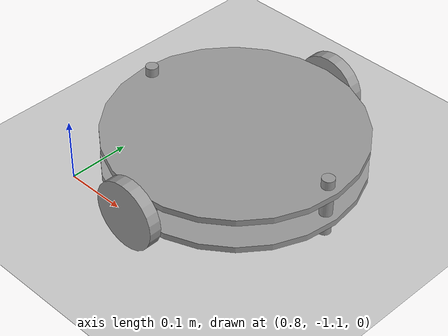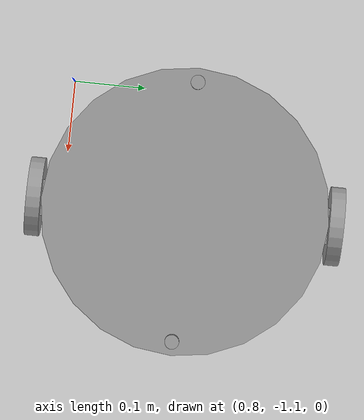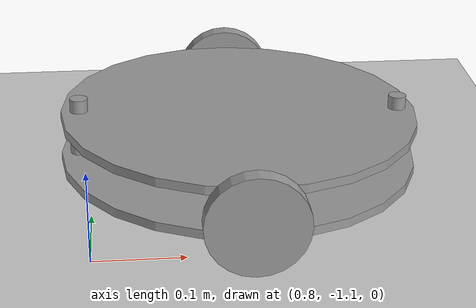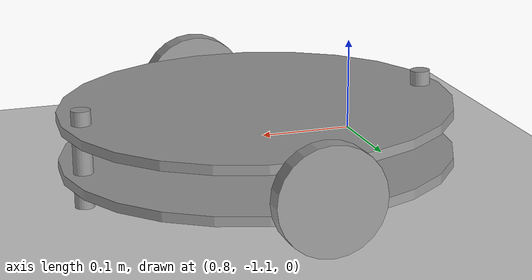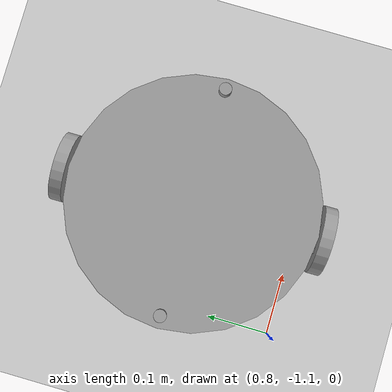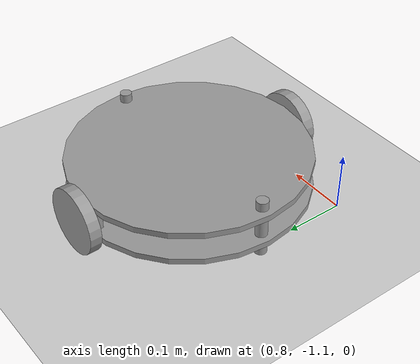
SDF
<sdf version="1.6">
 <world name="default">
  <model name="ground_plane">
   <static>1</static>
   <link name="link">
    <collision name="collision">
     <geometry><plane><normal>0 0 1</normal><size>100 100</size></plane></geometry>
     <surface><friction><ode><mu>100</mu><mu2>50</mu2></ode></friction></surface>
    </collision>
    <visual name="visual">
     <cast_shadows>0</cast_shadows>
     <geometry><plane><normal>0 0 1</normal><size>100 100</size></plane></geometry>
     <material>
      <script><uri>file://media/materials/scripts/gazebo.material</uri><name>Gazebo/Grey</name></script>
     </material>
    </visual>
   </link>
  </model>
  <model name="MyRobot">
   <link name="link_0">
    <pose>0 0 -0.02125 0 -0 0</pose>
    <inertial>
     <mass>1</mass>
     <inertia><ixx>0.145833</ixx><ixy>0</ixy><ixz>0</ixz><iyy>0.145833</iyy><iyz>0</iyz><izz>0.125</izz></inertia>
    </inertial>
    <visual name="visual">
     <geometry><cylinder><radius>0.2</radius><length>0.01</length></cylinder></geometry>
     <material>
      <lighting>1</lighting>
      <script><uri>file://media/materials/scripts/gazebo.material</uri><name>Gazebo/Grey</name></script>
      <ambient>0.3 0.3 0.3 1</ambient>
      <diffuse>0.7 0.7 0.7 1</diffuse>
      <specular>0.01 0.01 0.01 1</specular>
      <emissive>0 0 0 1</emissive>
      <shader type="vertex"><normal_map>__default__</normal_map></shader>
     </material>
    </visual>
    <collision name="collision">
     <geometry><cylinder><radius>0.2</radius><length>0.01</length></cylinder></geometry>
     <surface>
      <friction>
       <ode><mu>1</mu><mu2>1</mu2><fdir1>0 0 0</fdir1><slip1>0</slip1><slip2>0</slip2></ode>
       <torsional>
        <coefficient>1</coefficient>
        <patch_radius>0</patch_radius>
        <surface_radius>0</surface_radius>
        <use_patch_radius>1</use_patch_radius>
        <ode><slip>0</slip></ode>
       </torsional>
      </friction>
      <bounce><restitution_coefficient>0</restitution_coefficient><threshold>1e+06</threshold></bounce>
      <contact>
       <collide_without_contact>0</collide_without_contact>
       <collide_without_contact_bitmask>1</collide_without_contact_bitmask>
       <collide_bitmask>1</collide_bitmask>
       <ode>
        <soft_cfm>0</soft_cfm>
        <soft_erp>0.2</soft_erp>
        <kp>1e+13</kp>
        <kd>1</kd>
        <max_vel>0.01</max_vel>
        <min_depth>0</min_depth>
       </ode>
       <bullet>
        <split_impulse>1</split_impulse>
        <split_impulse_penetration_threshold>-0.01</split_impulse_penetration_threshold>
        <soft_cfm>0</soft_cfm>
        <soft_erp>0.2</soft_erp>
        <kp>1e+13</kp>
        <kd>1</kd>
       </bullet>
      </contact>
     </surface>
    </collision>
   </link>
   <link name="link_0_clone">
    <pose>0 0 0.02875 0 -0 0</pose>
    <inertial>
     <mass>1</mass>
     <inertia><ixx>0.145833</ixx><ixy>0</ixy><ixz>0</ixz><iyy>0.145833</iyy><iyz>0</iyz><izz>0.125</izz></inertia>
    </inertial>
    <visual name="visual">
     <geometry><cylinder><radius>0.2</radius><length>0.01</length></cylinder></geometry>
     <material>
      <lighting>1</lighting>
      <script><uri>file://media/materials/scripts/gazebo.material</uri><name>Gazebo/Grey</name></script>
      <ambient>0.3 0.3 0.3 1</ambient>
      <diffuse>0.7 0.7 0.7 1</diffuse>
      <specular>0.01 0.01 0.01 1</specular>
      <emissive>0 0 0 1</emissive>
      <shader type="vertex"><normal_map>__default__</normal_map></shader>
     </material>
    </visual>
    <collision name="collision">
     <geometry><cylinder><radius>0.2</radius><length>0.01</length></cylinder></geometry>
     <surface>
      <friction>
       <ode><mu>1</mu><mu2>1</mu2><fdir1>0 0 0</fdir1><slip1>0</slip1><slip2>0</slip2></ode>
       <torsional>
        <coefficient>1</coefficient>
        <patch_radius>0</patch_radius>
        <surface_radius>0</surface_radius>
        <use_patch_radius>1</use_patch_radius>
        <ode><slip>0</slip></ode>
       </torsional>
      </friction>
      <bounce><restitution_coefficient>0</restitution_coefficient><threshold>1e+06</threshold></bounce>
      <contact>
       <collide_without_contact>0</collide_without_contact>
       <collide_without_contact_bitmask>1</collide_without_contact_bitmask>
       <collide_bitmask>1</collide_bitmask>
       <ode>
        <soft_cfm>0</soft_cfm>
        <soft_erp>0.2</soft_erp>
        <kp>1e+13</kp>
        <kd>1</kd>
        <max_vel>0.01</max_vel>
        <min_depth>0</min_depth>
       </ode>
       <bullet>
        <split_impulse>1</split_impulse>
        <split_impulse_penetration_threshold>-0.01</split_impulse_penetration_threshold>
        <soft_cfm>0</soft_cfm>
        <soft_erp>0.2</soft_erp>
        <kp>1e+13</kp>
        <kd>1</kd>
       </bullet>
      </contact>
     </surface>
    </collision>
   </link>
   <link name="link_1">
    <pose>0.18 0 -0.00125 0 -0 0</pose>
    <inertial>
     <mass>1</mass>
     <inertia><ixx>0.145833</ixx><ixy>0</ixy><ixz>0</ixz><iyy>0.145833</iyy><iyz>0</iyz><izz>0.125</izz></inertia>
    </inertial>
    <visual name="visual">
     <geometry><cylinder><radius>0.01</radius><length>0.1</length></cylinder></geometry>
     <material>
      <lighting>1</lighting>
      <script><uri>file://media/materials/scripts/gazebo.material</uri><name>Gazebo/Grey</name></script>
      <ambient>0.3 0.3 0.3 1</ambient>
      <diffuse>0.7 0.7 0.7 1</diffuse>
      <specular>0.01 0.01 0.01 1</specular>
      <emissive>0 0 0 1</emissive>
      <shader type="vertex"><normal_map>__default__</normal_map></shader>
     </material>
    </visual>
    <collision name="collision">
     <geometry><cylinder><radius>0.01</radius><length>0.1</length></cylinder></geometry>
     <surface>
      <friction>
       <ode><mu>1</mu><mu2>1</mu2><fdir1>0 0 0</fdir1><slip1>0</slip1><slip2>0</slip2></ode>
       <torsional>
        <coefficient>1</coefficient>
        <patch_radius>0</patch_radius>
        <surface_radius>0</surface_radius>
        <use_patch_radius>1</use_patch_radius>
        <ode><slip>0</slip></ode>
       </torsional>
      </friction>
      <bounce><restitution_coefficient>0</restitution_coefficient><threshold>1e+06</threshold></bounce>
      <contact>
       <collide_without_contact>0</collide_without_contact>
       <collide_without_contact_bitmask>1</collide_without_contact_bitmask>
       <collide_bitmask>1</collide_bitmask>
       <ode>
        <soft_cfm>0</soft_cfm>
        <soft_erp>0.2</soft_erp>
        <kp>1e+13</kp>
        <kd>1</kd>
        <max_vel>0.01</max_vel>
        <min_depth>0</min_depth>
       </ode>
       <bullet>
        <split_impulse>1</split_impulse>
        <split_impulse_penetration_threshold>-0.01</split_impulse_penetration_threshold>
        <soft_cfm>0</soft_cfm>
        <soft_erp>0.2</soft_erp>
        <kp>1e+13</kp>
        <kd>1</kd>
       </bullet>
      </contact>
     </surface>
    </collision>
   </link>
   <link name="link_1_clone">
    <pose>-0.18 0 -0.00125 0 -0 0</pose>
    <inertial>
     <mass>1</mass>
     <inertia><ixx>0.145833</ixx><ixy>0</ixy><ixz>0</ixz><iyy>0.145833</iyy><iyz>0</iyz><izz>0.125</izz></inertia>
    </inertial>
    <visual name="visual">
     <geometry><cylinder><radius>0.01</radius><length>0.1</length></cylinder></geometry>
     <material>
      <lighting>1</lighting>
      <script><uri>file://media/materials/scripts/gazebo.material</uri><name>Gazebo/Grey</name></script>
      <ambient>0.3 0.3 0.3 1</ambient>
      <diffuse>0.7 0.7 0.7 1</diffuse>
      <specular>0.01 0.01 0.01 1</specular>
      <emissive>0 0 0 1</emissive>
      <shader type="vertex"><normal_map>__default__</normal_map></shader>
     </material>
    </visual>
    <collision name="collision">
     <geometry><cylinder><radius>0.01</radius><length>0.1</length></cylinder></geometry>
     <surface>
      <friction>
       <ode><mu>1</mu><mu2>1</mu2><fdir1>0 0 0</fdir1><slip1>0</slip1><slip2>0</slip2></ode>
       <torsional>
        <coefficient>1</coefficient>
        <patch_radius>0</patch_radius>
        <surface_radius>0</surface_radius>
        <use_patch_radius>1</use_patch_radius>
        <ode><slip>0</slip></ode>
       </torsional>
      </friction>
      <bounce><restitution_coefficient>0</restitution_coefficient><threshold>1e+06</threshold></bounce>
      <contact>
       <collide_without_contact>0</collide_without_contact>
       <collide_without_contact_bitmask>1</collide_without_contact_bitmask>
       <collide_bitmask>1</collide_bitmask>
       <ode>
        <soft_cfm>0</soft_cfm>
        <soft_erp>0.2</soft_erp>
        <kp>1e+13</kp>
        <kd>1</kd>
        <max_vel>0.01</max_vel>
        <min_depth>0</min_depth>
       </ode>
       <bullet>
        <split_impulse>1</split_impulse>
        <split_impulse_penetration_threshold>-0.01</split_impulse_penetration_threshold>
        <soft_cfm>0</soft_cfm>
        <soft_erp>0.2</soft_erp>
        <kp>1e+13</kp>
        <kd>1</kd>
       </bullet>
      </contact>
     </surface>
    </collision>
   </link>
   <link name="link_2">
    <pose>0 0.19 -0.00125 0 -0 0</pose>
    <inertial>
     <mass>1</mass>
     <inertia>
      <ixx>0.166667</ixx>
      <ixy>0</ixy>
      <ixz>0</ixz>
      <iyy>0.166667</iyy>
      <iyz>0</iyz>
      <izz>0.166667</izz>
     </inertia>
    </inertial>
    <visual name="visual">
     <geometry><box><size>0.05 0.02 0.05</size></box></geometry>
     <material>
      <lighting>1</lighting>
      <script><uri>file://media/materials/scripts/gazebo.material</uri><name>Gazebo/Grey</name></script>
      <ambient>0.3 0.3 0.3 1</ambient>
      <diffuse>0.7 0.7 0.7 1</diffuse>
      <specular>0.01 0.01 0.01 1</specular>
      <emissive>0 0 0 1</emissive>
      <shader type="vertex"><normal_map>__default__</normal_map></shader>
     </material>
    </visual>
    <collision name="collision">
     <geometry><box><size>0.05 0.02 0.05</size></box></geometry>
     <surface>
      <friction>
       <ode><mu>1</mu><mu2>1</mu2><fdir1>0 0 0</fdir1><slip1>0</slip1><slip2>0</slip2></ode>
       <torsional>
        <coefficient>1</coefficient>
        <patch_radius>0</patch_radius>
        <surface_radius>0</surface_radius>
        <use_patch_radius>1</use_patch_radius>
        <ode><slip>0</slip></ode>
       </torsional>
      </friction>
      <bounce><restitution_coefficient>0</restitution_coefficient><threshold>1e+06</threshold></bounce>
      <contact>
       <collide_without_contact>0</collide_without_contact>
       <collide_without_contact_bitmask>1</collide_without_contact_bitmask>
       <collide_bitmask>1</collide_bitmask>
       <ode>
        <soft_cfm>0</soft_cfm>
        <soft_erp>0.2</soft_erp>
        <kp>1e+13</kp>
        <kd>1</kd>
        <max_vel>0.01</max_vel>
        <min_depth>0</min_depth>
       </ode>
       <bullet>
        <split_impulse>1</split_impulse>
        <split_impulse_penetration_threshold>-0.01</split_impulse_penetration_threshold>
        <soft_cfm>0</soft_cfm>
        <soft_erp>0.2</soft_erp>
        <kp>1e+13</kp>
        <kd>1</kd>
       </bullet>
      </contact>
     </surface>
    </collision>
   </link>
   <link name="link_2_clone">
    <pose>0 -0.19 -0.00125 0 -0 0</pose>
    <inertial>
     <mass>1</mass>
     <inertia>
      <ixx>0.166667</ixx>
      <ixy>0</ixy>
      <ixz>0</ixz>
      <iyy>0.166667</iyy>
      <iyz>0</iyz>
      <izz>0.166667</izz>
     </inertia>
    </inertial>
    <visual name="visual">
     <geometry><box><size>0.05 0.02 0.05</size></box></geometry>
     <material>
      <lighting>1</lighting>
      <script><uri>file://media/materials/scripts/gazebo.material</uri><name>Gazebo/Grey</name></script>
      <ambient>0.3 0.3 0.3 1</ambient>
      <diffuse>0.7 0.7 0.7 1</diffuse>
      <specular>0.01 0.01 0.01 1</specular>
      <emissive>0 0 0 1</emissive>
      <shader type="vertex"><normal_map>__default__</normal_map></shader>
     </material>
    </visual>
    <collision name="collision">
     <geometry><box><size>0.05 0.02 0.05</size></box></geometry>
     <surface>
      <friction>
       <ode><mu>1</mu><mu2>1</mu2><fdir1>0 0 0</fdir1><slip1>0</slip1><slip2>0</slip2></ode>
       <torsional>
        <coefficient>1</coefficient>
        <patch_radius>0</patch_radius>
        <surface_radius>0</surface_radius>
        <use_patch_radius>1</use_patch_radius>
        <ode><slip>0</slip></ode>
       </torsional>
      </friction>
      <bounce><restitution_coefficient>0</restitution_coefficient><threshold>1e+06</threshold></bounce>
      <contact>
       <collide_without_contact>0</collide_without_contact>
       <collide_without_contact_bitmask>1</collide_without_contact_bitmask>
       <collide_bitmask>1</collide_bitmask>
       <ode>
        <soft_cfm>0</soft_cfm>
        <soft_erp>0.2</soft_erp>
        <kp>1e+13</kp>
        <kd>1</kd>
        <max_vel>0.01</max_vel>
        <min_depth>0</min_depth>
       </ode>
       <bullet>
        <split_impulse>1</split_impulse>
        <split_impulse_penetration_threshold>-0.01</split_impulse_penetration_threshold>
        <soft_cfm>0</soft_cfm>
        <soft_erp>0.2</soft_erp>
        <kp>1e+13</kp>
        <kd>1</kd>
       </bullet>
      </contact>
     </surface>
    </collision>
   </link>
   <link name="link_3">
    <pose>0 -0.21 -0.00125 1.5708 -0 0</pose>
    <inertial>
     <mass>1</mass>
     <inertia><ixx>0.145833</ixx><ixy>0</ixy><ixz>0</ixz><iyy>0.145833</iyy><iyz>0</iyz><izz>0.125</izz></inertia>
    </inertial>
    <visual name="visual">
     <geometry><cylinder><radius>0.055</radius><length>0.02</length></cylinder></geometry>
     <material>
      <lighting>1</lighting>
      <script><uri>file://media/materials/scripts/gazebo.material</uri><name>Gazebo/Grey</name></script>
      <ambient>0.3 0.3 0.3 1</ambient>
      <diffuse>0.7 0.7 0.7 1</diffuse>
      <specular>0.01 0.01 0.01 1</specular>
      <emissive>0 0 0 1</emissive>
      <shader type="vertex"><normal_map>__default__</normal_map></shader>
     </material>
    </visual>
    <collision name="collision">
     <geometry><cylinder><radius>0.055</radius><length>0.02</length></cylinder></geometry>
     <surface>
      <friction>
       <ode><mu>1</mu><mu2>1</mu2><fdir1>0 0 0</fdir1><slip1>0</slip1><slip2>0</slip2></ode>
       <torsional>
        <coefficient>1</coefficient>
        <patch_radius>0</patch_radius>
        <surface_radius>0</surface_radius>
        <use_patch_radius>1</use_patch_radius>
        <ode><slip>0</slip></ode>
       </torsional>
      </friction>
      <bounce><restitution_coefficient>0</restitution_coefficient><threshold>1e+06</threshold></bounce>
      <contact>
       <collide_without_contact>0</collide_without_contact>
       <collide_without_contact_bitmask>1</collide_without_contact_bitmask>
       <collide_bitmask>1</collide_bitmask>
       <ode>
        <soft_cfm>0</soft_cfm>
        <soft_erp>0.2</soft_erp>
        <kp>1e+13</kp>
        <kd>1</kd>
        <max_vel>0.01</max_vel>
        <min_depth>0</min_depth>
       </ode>
       <bullet>
        <split_impulse>1</split_impulse>
        <split_impulse_penetration_threshold>-0.01</split_impulse_penetration_threshold>
        <soft_cfm>0</soft_cfm>
        <soft_erp>0.2</soft_erp>
        <kp>1e+13</kp>
        <kd>1</kd>
       </bullet>
      </contact>
     </surface>
    </collision>
   </link>
   <link name="link_3_clone">
    <pose>0 0.21 -0.00125 -1.5708 0 0</pose>
    <inertial>
     <mass>1</mass>
     <inertia><ixx>0.145833</ixx><ixy>0</ixy><ixz>0</ixz><iyy>0.145833</iyy><iyz>0</iyz><izz>0.125</izz></inertia>
    </inertial>
    <visual name="visual">
     <geometry><cylinder><radius>0.055</radius><length>0.02</length></cylinder></geometry>
     <material>
      <lighting>1</lighting>
      <script><uri>file://media/materials/scripts/gazebo.material</uri><name>Gazebo/Grey</name></script>
      <ambient>0.3 0.3 0.3 1</ambient>
      <diffuse>0.7 0.7 0.7 1</diffuse>
      <specular>0.01 0.01 0.01 1</specular>
      <emissive>0 0 0 1</emissive>
      <shader type="vertex"><normal_map>__default__</normal_map></shader>
     </material>
    </visual>
    <collision name="collision">
     <geometry><cylinder><radius>0.055</radius><length>0.02</length></cylinder></geometry>
     <surface>
      <friction>
       <ode><mu>1</mu><mu2>1</mu2><fdir1>0 0 0</fdir1><slip1>0</slip1><slip2>0</slip2></ode>
       <torsional>
        <coefficient>1</coefficient>
        <patch_radius>0</patch_radius>
        <surface_radius>0</surface_radius>
        <use_patch_radius>1</use_patch_radius>
        <ode><slip>0</slip></ode>
       </torsional>
      </friction>
      <bounce><restitution_coefficient>0</restitution_coefficient><threshold>1e+06</threshold></bounce>
      <contact>
       <collide_without_contact>0</collide_without_contact>
       <collide_without_contact_bitmask>1</collide_without_contact_bitmask>
       <collide_bitmask>1</collide_bitmask>
       <ode>
        <soft_cfm>0</soft_cfm>
        <soft_erp>0.2</soft_erp>
        <kp>1e+13</kp>
        <kd>1</kd>
        <max_vel>0.01</max_vel>
        <min_depth>0</min_depth>
       </ode>
       <bullet>
        <split_impulse>1</split_impulse>
        <split_impulse_penetration_threshold>-0.01</split_impulse_penetration_threshold>
        <soft_cfm>0</soft_cfm>
        <soft_erp>0.2</soft_erp>
        <kp>1e+13</kp>
        <kd>1</kd>
       </bullet>
      </contact>
     </surface>
    </collision>
   </link>
   <joint name="link_0_JOINT_1" type="fixed">
    <parent>link_0</parent>
    <child>link_1</child>
    <physics>
     <ode><limit><cfm>0</cfm><erp>0.2</erp></limit><suspension><cfm>0</cfm><erp>0.2</erp></suspension></ode>
    </physics>
   </joint>
   <joint name="link_0_JOINT_2" type="fixed">
    <parent>link_0</parent>
    <child>link_1_clone</child>
    <physics>
     <ode><limit><cfm>0</cfm><erp>0.2</erp></limit><suspension><cfm>0</cfm><erp>0.2</erp></suspension></ode>
    </physics>
   </joint>
   <joint name="link_0_JOINT_4" type="fixed">
    <parent>link_0</parent>
    <child>link_2</child>
    <physics>
     <ode><limit><cfm>0</cfm><erp>0.2</erp></limit><suspension><cfm>0</cfm><erp>0.2</erp></suspension></ode>
    </physics>
   </joint>
   <joint name="link_0_JOINT_5" type="fixed">
    <parent>link_0</parent>
    <child>link_2_clone</child>
    <physics>
     <ode><limit><cfm>0</cfm><erp>0.2</erp></limit><suspension><cfm>0</cfm><erp>0.2</erp></suspension></ode>
    </physics>
   </joint>
   <joint name="link_0_clone_JOINT_3" type="fixed">
    <parent>link_0_clone</parent>
    <child>link_0</child>
    <physics>
     <ode><limit><cfm>0</cfm><erp>0.2</erp></limit><suspension><cfm>0</cfm><erp>0.2</erp></suspension></ode>
    </physics>
   </joint>
   <joint name="link_2_JOINT_7" type="revolute">
    <parent>link_2</parent>
    <child>link_3_clone</child>
    <axis>
     <xyz>0 0 1</xyz>
     <use_parent_model_frame>0</use_parent_model_frame>
     <limit>
      <lower>-1.79769e+308</lower>
      <upper>1.79769e+308</upper>
      <effort>-1</effort>
      <velocity>-1</velocity>
     </limit>
     <dynamics>
      <spring_reference>0</spring_reference>
      <spring_stiffness>0</spring_stiffness>
      <damping>0</damping>
     </dynamics>
    </axis>
    <physics>
     <ode><limit><cfm>0</cfm><erp>0.2</erp></limit><suspension><cfm>0</cfm><erp>0.2</erp></suspension></ode>
    </physics>
   </joint>
   <joint name="link_2_clone_JOINT_6" type="revolute">
    <parent>link_2_clone</parent>
    <child>link_3</child>
    <axis>
     <xyz>0 0 1</xyz>
     <use_parent_model_frame>0</use_parent_model_frame>
     <limit>
      <lower>-1.79769e+308</lower>
      <upper>1.79769e+308</upper>
      <effort>-1</effort>
      <velocity>-1</velocity>
     </limit>
     <dynamics>
      <spring_reference>0</spring_reference>
      <spring_stiffness>0</spring_stiffness>
      <damping>0</damping>
     </dynamics>
    </axis>
    <physics>
     <ode><limit><cfm>0</cfm><erp>0.2</erp></limit><suspension><cfm>0</cfm><erp>0.2</erp></suspension></ode>
    </physics>
   </joint>
   <static>0</static>
   <pose>0.967868 -0.926022 0.05625 2e-06 0.025655 0.002142</pose>
  </model>
 </world>
</sdf>
